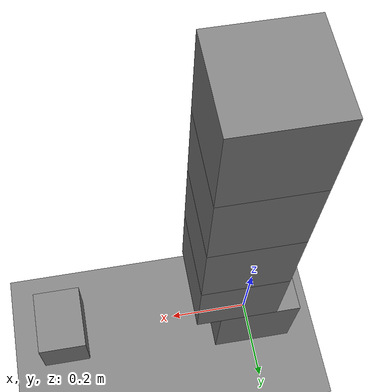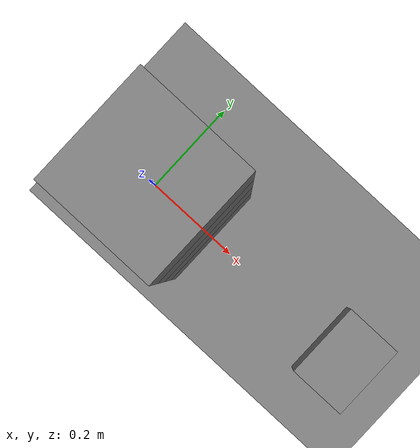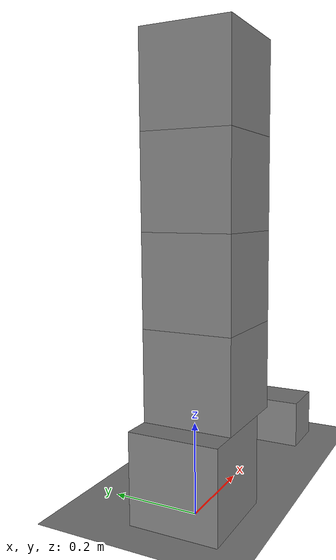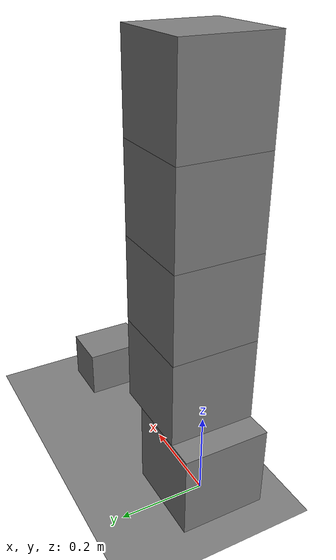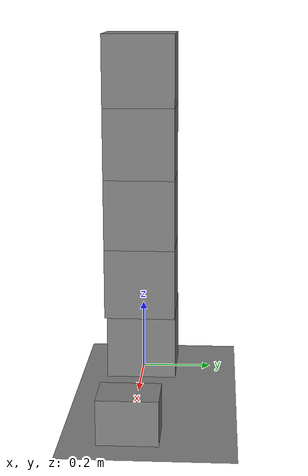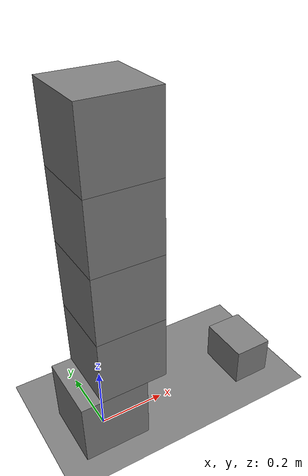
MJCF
<mujoco model="stack_fixture">
  <option timestep="0.002"/>
  <worldbody>
    <geom name="floor" type="plane" size="6 6 0.1" friction="0.6 0.005 0.0001"/>
    <body name="block1" pos="0 0 0.100">
      <freejoint/>
      <geom name="block1" type="box" size="0.1 0.1 0.1" mass="0.5" priority="1" friction="0.3 0.005 0.0001"/>
    </body>
    <body name="block2" pos="0.06 0 0.300">
      <freejoint/>
      <geom name="block2" type="box" size="0.1 0.1 0.1" mass="0.5" friction="0.6 0.005 0.0001"/>
    </body>
    <body name="block3" pos="0.06 0 0.500">
      <freejoint/>
      <geom name="block3" type="box" size="0.1 0.1 0.1" mass="0.5" friction="0.6 0.005 0.0001"/>
    </body>
    <body name="block4" pos="0.06 0 0.700">
      <freejoint/>
      <geom name="block4" type="box" size="0.1 0.1 0.1" mass="0.5" friction="0.6 0.005 0.0001"/>
    </body>
    <body name="block5" pos="0.06 0 0.900">
      <freejoint/>
      <geom name="block5" type="box" size="0.1 0.1 0.1" mass="0.5" friction="0.6 0.005 0.0001"/>
    </body>
    <body name="pusher" pos="0.5 0 0.06">
      <freejoint/>
      <geom name="pusher" type="box" size="0.06 0.08 0.06" mass="1.0" friction="0.6 0.005 0.0001"/>
    </body>
  </worldbody>
  <keyframe>
    <key name="start" qpos="0 0 0.100 1 0 0 0  0.06 0 0.300 1 0 0 0  0.06 0 0.500 1 0 0 0  0.06 0 0.700 1 0 0 0  0.06 0 0.900 1 0 0 0  0.5 0 0.06 1 0 0 0" qvel="0 0 0 0 0 0  0 0 0 0 0 0  0 0 0 0 0 0  0 0 0 0 0 0  0 0 0 0 0 0  -3.0 0 0 0 0 0"/>
  </keyframe>
</mujoco>
